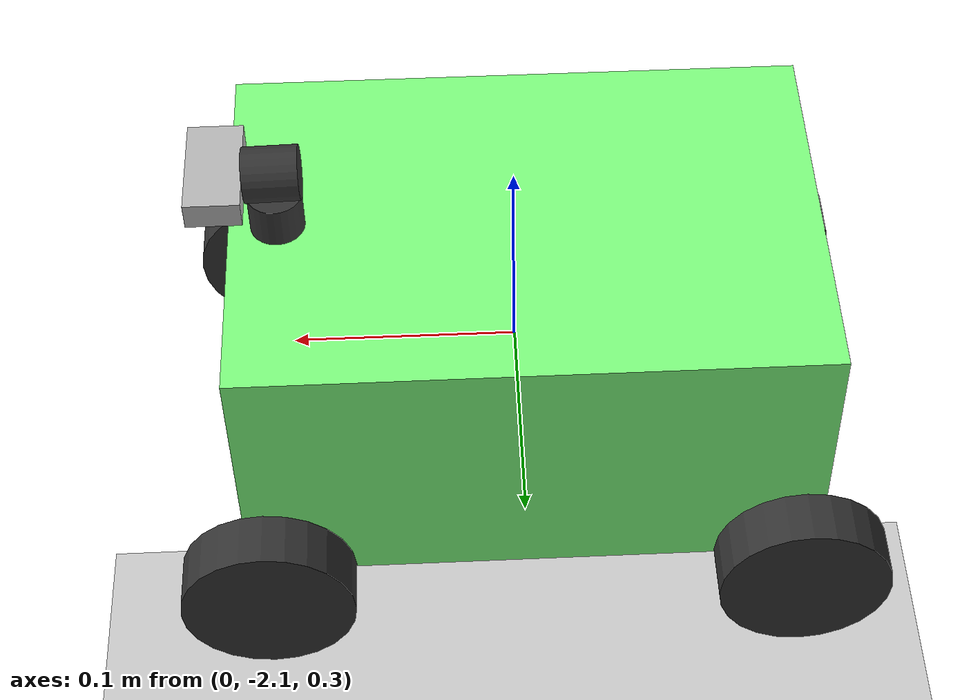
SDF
<?xml version="1.0" ?>
<sdf version="1.6">
  <world name="diff_drive">

    <physics name="1ms" type="ignored">
      <max_step_size>0.001</max_step_size>
      <real_time_factor>1.0</real_time_factor>
    </physics>
    <plugin
      filename="ignition-gazebo-physics-system"
      name="ignition::gazebo::systems::Physics">
    </plugin>
    <plugin
      filename="ignition-gazebo-user-commands-system"
      name="ignition::gazebo::systems::UserCommands">
    </plugin>
    <plugin
      filename="ignition-gazebo-scene-broadcaster-system"
      name="ignition::gazebo::systems::SceneBroadcaster">
    </plugin>

    <light type="directional" name="sun">
      <cast_shadows>true</cast_shadows>
      <pose>0 0 10 0 0 0</pose>
      <diffuse>1 1 1 1</diffuse>
      <specular>0.5 0.5 0.5 1</specular>
      <attenuation>
        <range>1000</range>
        <constant>0.9</constant>
        <linear>0.01</linear>
        <quadratic>0.001</quadratic>
      </attenuation>
      <direction>-0.5 0.1 -0.9</direction>
    </light>

    <model name="ground_plane">
      <static>true</static>
      <link name="link">
        <collision name="collision">
          <geometry>
            <plane>
              <normal>0 0 1</normal>
              <size>100 100</size>
            </plane>
          </geometry>
        </collision>
        <visual name="visual">
          <geometry>
            <plane>
              <normal>0 0 1</normal>
              <size>100 100</size>
            </plane>
          </geometry>
            <material>
            <pbr>
                <metal>
                    <albedo_map>floor.png</albedo_map>
                </metal>
            </pbr>
            </material>
        </visual>
      </link>

    <link name='plate1'>
        <pose>0.065 0 0 0 0 0</pose>
        <inertial>
          <mass>0.01</mass>
          <inertia>
            <ixx>0.126164</ixx>
            <ixy>0</ixy>
            <ixz>0</ixz>
            <iyy>0.416519</iyy>
            <iyz>0</iyz>
            <izz>0.481014</izz>
          </inertia>
        </inertial>
        <visual name='visual'>
          <geometry>
            <box>
              <size>10 0.05 0.005</size>
            </box>
          </geometry>
          <material>
            <ambient>0 0 0 1</ambient>
            <diffuse>0 0 0 1</diffuse>
            <specular>0 0 0 1</specular>
          </material>
        </visual>
      </link>

      <link name='plate2'>
        <pose>5 2.5 0 0 0 0</pose>
        <inertial>
          <mass>0.01</mass>
          <inertia>
            <ixx>0.126164</ixx>
            <ixy>0</ixy>
            <ixz>0</ixz>
            <iyy>0.416519</iyy>
            <iyz>0</iyz>
            <izz>0.481014</izz>
          </inertia>
        </inertial>
        <visual name='visual'>
          <geometry>
            <box>
              <size>0.05 5 0.005</size>
            </box>
          </geometry>
          <material>
            <ambient>0 0 0 1</ambient>
            <diffuse>0 0 0 1</diffuse>
            <specular>0 0 0 1</specular>
          </material>
        </visual>
      </link>

       <joint name='glue' type='fixed'>
        <parent>link</parent>
        <child>plate1</child>
      </joint>

      <joint name='glue1' type='fixed'>
        <parent>plate1</parent>
        <child>plate2</child>
      </joint>
    </model>

    <model name='vehicle_green'>
      <pose>0 -2 0.325 0 -0 0</pose>

    <!--     BODY PARTS        -->
        <link name='chassis'>
            <pose>0 0 .1 0 0 0</pose>
            <inertial>
              <mass>4</mass>
              <inertia>
                <ixx>0.005</ixx>
                <ixy>0</ixy>
                <ixz>0</ixz>
                <iyy>0.005</iyy>
                <iyz>0</iyz>
                <izz>0.005</izz>
              </inertia>
            </inertial>
            <visual name='visual'>
              <geometry>
                <box>
                  <size>0.2159 0.1524 0.10795</size>
                </box>
              </geometry>
              <material>
                <ambient>0.5 1.0 0.5 1</ambient>
                <diffuse>0.5 1.0 0.5 1</diffuse>
                <specular>0.0 1.0 0.0 1</specular>
              </material>
            </visual>
            <collision name='collision'>
              <geometry>
                <box>
                  <size>0.2159 0.1524 0.10795</size>
                </box>
              </geometry>
            </collision>
          </link>

        <link name='plate'>
            <pose>0.065 0 0.045 0 0 0</pose>
            <inertial>
              <mass>.01</mass>
              <inertia>
                <ixx>0.001</ixx>
                <ixy>0</ixy>
                <ixz>0</ixz>
                <iyy>0.001</iyy>
                <iyz>0</iyz>
                <izz>0.001</izz>
              </inertia>
            </inertial>
            <visual name='visual'>
              <geometry>
                <box>
                  <size>0.1 0.05 0.005</size>
                </box>
              </geometry>
              <material>
                <ambient>0.8 2.0 0.5 1</ambient>
                <diffuse>0.5 2.0 0.5 1</diffuse>
                <specular>100 100.0 100.0 1</specular>
              </material>
            </visual>
          </link>

    <!--        Wheel section   -->

      <link name='rear_left_wheel'>
        <pose>-0.1 0.088 0.05 0 1.5707 1.5707</pose>
        <inertial>
          <mass>1</mass>
          <inertia>
            <ixx>0.001</ixx>
            <ixy>0</ixy>
            <ixz>0</ixz>
            <iyy>0.001</iyy>
            <iyz>0</iyz>
            <izz>0.001</izz>
          </inertia>
        </inertial>
        <visual name='visual'>
          <geometry>
            <cylinder>
              <radius>0.0325</radius>
              <length>.02</length>
            </cylinder>
          </geometry>
          <material>
            <ambient>0.2 0.2 0.2 1</ambient>
            <diffuse>0.2 0.2 0.2 1</diffuse>
            <specular>0.2 0.2 0.2 1</specular>
          </material>
        </visual>
        <collision name='collision'>
          <geometry>
            <cylinder>
              <radius>0.0325</radius>
              <length>.02</length>
            </cylinder>
          </geometry>
        </collision>
      </link>

      <link name='rear_right_wheel'>
        <pose> -0.1 -0.088 0.05 0 1.5707 1.5707 </pose>
        <inertial>
          <mass>1</mass>
          <inertia>
            <ixx>0.001</ixx>
            <ixy>0</ixy>
            <ixz>0</ixz>
            <iyy>0.001</iyy>
            <iyz>0</iyz>
            <izz>0.001</izz>
          </inertia>
        </inertial>
        <visual name='visual'>
          <geometry>
            <cylinder>
              <radius>0.0325</radius>
              <length>.02</length>
            </cylinder>
          </geometry>
          <material>
            <ambient>0.2 0.2 0.2 1</ambient>
            <diffuse>0.2 0.2 0.2 1</diffuse>
            <specular>0.2 0.2 0.2 1</specular>
          </material>
        </visual>
        <collision name='collision'>
          <geometry>
            <cylinder>
              <radius>0.0325</radius>
              <length>.02</length>
            </cylinder>
          </geometry>
        </collision>
      </link>

      <link name='front_left_wheel'>
        <pose>0.1 0.088 0.05 0 1.5707 1.5707</pose>
        <inertial>
          <mass>1</mass>
          <inertia>
            <ixx>0.001</ixx>
            <ixy>0</ixy>
            <ixz>0</ixz>
            <iyy>0.001</iyy>
            <iyz>0</iyz>
            <izz>0.001</izz>
          </inertia>
        </inertial>
        <visual name='visual'>
          <geometry>
            <cylinder>
              <radius>0.0325</radius>
              <length>.02</length>
            </cylinder>
          </geometry>
          <material>
            <ambient>0.2 0.2 0.2 1</ambient>
            <diffuse>0.2 0.2 0.2 1</diffuse>
            <specular>0.2 0.2 0.2 1</specular>
          </material>
        </visual>
        <collision name='collision'>
          <geometry>
            <cylinder>
              <radius>0.0325</radius>
              <length>.02</length>
            </cylinder>
          </geometry>
        </collision>
      </link>

      <link name='front_right_wheel'>
        <pose>0.1 -0.088 0.05 0 1.5707 1.5707</pose>
        <inertial>
          <mass>1</mass>
          <inertia>
            <ixx>0.001</ixx>
            <ixy>0</ixy>
            <ixz>0</ixz>
            <iyy>0.001</iyy>
            <iyz>0</iyz>
            <izz>0.001</izz>
          </inertia>
        </inertial>
        <visual name='visual'>
          <geometry>
             <cylinder>
              <radius>0.0325</radius>
              <length>.02</length>
            </cylinder>
          </geometry>
          <material>
            <ambient>0.2 0.2 0.2 1</ambient>
            <diffuse>0.2 0.2 0.2 1</diffuse>
            <specular>0.2 0.2 0.2 1</specular>
          </material>
        </visual>
        <collision name='collision'>
          <geometry>
            <cylinder>
              <radius>0.0325</radius>
              <length>.02</length>
            </cylinder>
          </geometry>
        </collision>
      </link>

    <!--        Servo section   -->

      <link name='head'>
        <pose>0.090 0 0.16 0 0 0</pose>
        <inertial>
          <mass>0.03</mass>
          <inertia>
            <ixx>0.001</ixx>
            <ixy>0</ixy>
            <ixz>0</ixz>
            <iyy>0.001</iyy>
            <iyz>0</iyz>
            <izz>0.001</izz>
          </inertia>
        </inertial>
        <visual name='visual'>
          <geometry>
          <cylinder>
            <radius>0.01</radius>
            <length>0.02</length>
          </cylinder>
          </geometry>
          <material>
            <ambient>0.2 0.2 0.2 1</ambient>
            <diffuse>0.2 0.2 0.2 1</diffuse>
            <specular>0.2 0.2 0.2 1</specular>
          </material>
        </visual>
        <collision name='collision'>
          <geometry>
          <cylinder>
            <radius>0.01</radius>
            <length>0.02</length>
          </cylinder>
          </geometry>
        </collision>
      </link>

      <link name='head2'>
        <pose>0.090 0 0.18 0 1.6 0</pose>
        <inertial>
          <mass>0.03</mass>
          <inertia>
            <ixx>0.001</ixx>
            <ixy>0</ixy>
            <ixz>0</ixz>
            <iyy>0.001</iyy>
            <iyz>0</iyz>
            <izz>0.001</izz>
          </inertia>
        </inertial>
        <visual name='visual'>
          <geometry>
          <cylinder>
            <radius>0.01</radius>
            <length>0.02</length>
          </cylinder>
          </geometry>
          <material>
            <ambient>0.2 0.2 0.2 1</ambient>
            <diffuse>0.2 0.2 0.2 1</diffuse>
            <specular>0.2 0.2 0.2 1</specular>
          </material>
        </visual>
        <collision name='collision'>
          <geometry>
          <cylinder>
            <radius>0.01</radius>
            <length>0.02</length>
          </cylinder>
          </geometry>
        </collision>
      </link>

    <!--    sensor section   -->

      <link name='sensor'>
      <pose>0.11 0 0.18 0 0 0</pose>
     <inertial>
          <mass>0.02</mass>
          <inertia>
            <ixx>0.001</ixx>
            <ixy>0</ixy>
            <ixz>0</ixz>
            <iyy>0.001</iyy>
            <iyz>0</iyz>
            <izz>0.001</izz>
          </inertia>
        </inertial>
      <visual name='visual'>
        <pose>0 0 0 0 0 0</pose>
        <geometry>
          <box>
            <size>0.02 0.04 0.01</size>
          </box>
        </geometry>
      </visual>
    <collision name="collision">
        <pose >0 0 0 0 0 0</pose>
        <geometry>
          <box>
            <size>0.02 0.04 0.01</size>
          </box>
        </geometry>
      </collision>
      <frame name="lidar_frame" attached_to='sensor'>
            <pose>0.8 0 0.5 0 0 0</pose>
        </frame>
      <sensor name='gpu_lidar' type='gpu_lidar'>
          <always_on>1</always_on>
          <visualize>true</visualize>
          <topic>ultrasonic</topic>
          <update_rate>10</update_rate>
          <lidar>
              <scan>
                  <vertical>
                    <samples>5</samples>
                    <resolution>1</resolution>
                    <min_angle>0.00</min_angle>
                    <max_angle>0.25</max_angle>
                  </vertical>
              </scan>
          <range>
            <min>0.120000</min>
            <max>4</max>
            <resolution>0.015000</resolution>
          </range>
          <noise>
            <type>gaussian</type>
            <mean>0.0</mean>
            <stddev>0.01</stddev>
          </noise>
        </lidar>
          <plugin
            filename="libRosIgnPointCloud.so"
            name="ros_ign_point_cloud::PointCloud">
            <namespace>vehicle_green</namespace>
            <topic>pc2</topic>
            <frame_id>/sensor</frame_id>
          </plugin>
    </sensor>
    </link>

      <link name='right_IR'>
      <pose>0.115 0.020 0.042 0 1.6 0</pose>
     <inertial>
          <mass>0.01</mass>
          <inertia>
            <ixx>0.126164</ixx>
            <ixy>0</ixy>
            <ixz>0</ixz>
            <iyy>0.416519</iyy>
            <iyz>0</iyz>
            <izz>0.481014</izz>
          </inertia>
        </inertial>
      <visual name='visual'>
        <pose>0 0 0 0 0 0</pose>
        <geometry>
          <box>
            <size>0.001 0.004 0.001</size>
          </box>
        </geometry>
        <material>
            <ambient>1 0 0 1</ambient>
            <diffuse>1 0 0 1</diffuse>
            <specular>0.1 0.1 0.1 1</specular>
            <emissive>0 0 0 0</emissive>
      </material>
      </visual>
      <sensor name="depth_camera_right" type="depth_camera">
          <update_rate>17</update_rate>
          <visualize>true</visualize>
          <always_on>1</always_on>
          <topic>depth_camera_right</topic>
          <camera>
            <horizontal_fov>1.2</horizontal_fov>
            <image>
              <width>5</width>
              <height>5</height>
              <format>RGB_INT8</format>
            </image>
            <clip>
              <near>0.0001</near>
              <far>10.0</far>
            </clip>
          </camera>
      </sensor>
    </link>

      <link name='left_IR'>
      <pose>0.115 -0.020 0.042 0 1.6 0</pose>
     <inertial>
          <mass>0.01</mass>
          <inertia>
            <ixx>0.126164</ixx>
            <ixy>0</ixy>
            <ixz>0</ixz>
            <iyy>0.416519</iyy>
            <iyz>0</iyz>
            <izz>0.481014</izz>
          </inertia>
        </inertial>
      <visual name='visual'>
        <pose>0 0 0 0 0 0</pose>
        <geometry>
          <box>
            <size>0.001 0.004 0.001</size>
          </box>
        </geometry>
        <material>
            <ambient>1 0 0 1</ambient>
            <diffuse>1 0 0 1</diffuse>
            <specular>0.1 0.1 0.1 1</specular>
            <emissive>0 0 0 0</emissive>
      </material>
      </visual>
        <sensor name="depth_camera_left" type="depth_camera">
          <update_rate>10</update_rate>
          <topic>depth_camera_left</topic>
          <camera>
            <horizontal_fov>1.2</horizontal_fov>
            <image>
              <width>5</width>
              <height>5</height>
              <format>RGB_INT8</format>
            </image>
            <clip>
              <near>0.0001</near>
              <far>10.0</far>
            </clip>
          </camera>
        </sensor>
    </link>

      <link name='middle_IR'>
      <pose>0.115 0 0.042 0 1.6 0</pose>
     <inertial>
          <mass>0.01</mass>
          <inertia>
            <ixx>0.126164</ixx>
            <ixy>0</ixy>
            <ixz>0</ixz>
            <iyy>0.416519</iyy>
            <iyz>0</iyz>
            <izz>0.481014</izz>
          </inertia>
        </inertial>
      <visual name='visual'>
        <pose>0 0 0 0 0 0</pose>
        <geometry>
          <box>
            <size>0.001 0.004 0.001</size>
          </box>
        </geometry>
        <material>
            <ambient>1 0 0 1</ambient>
            <diffuse>1 0 0 1</diffuse>
            <specular>0.1 0.1 0.1 1</specular>
            <emissive>0 0 0 0</emissive>
      </material>
      </visual>
      <sensor name="depth_camera1" type="depth_camera">
          <update_rate>10</update_rate>
          <topic>depth_camera_middle</topic>
           <camera>
            <horizontal_fov>1.2</horizontal_fov>
            <image>
              <width>5</width>
              <height>5</height>
              <format>RGB_INT8</format>
            </image>
            <clip>
              <near>0.0001</near>
              <far>10.0</far>
            </clip>
          </camera>
      </sensor>
    </link>

     <!--    Invisible section-->
      <link name='rear_left_wheel_inv'>
        <pose>-0.1 0.088 0.05 0 1.5707 1.5707</pose>
        <inertial>
          <mass>2</mass>
          <inertia>
            <ixx>0.145833</ixx>
            <ixy>0</ixy>
            <ixz>0</ixz>
            <iyy>0.145833</iyy>
            <iyz>0</iyz>
            <izz>0.125</izz>
          </inertia>
        </inertial>
      </link>

      <link name='rear_right_wheel_inv'>
        <pose> -0.1 -0.088 0.05 0 1.5707 1.5707 </pose>
        <inertial>
          <mass>2</mass>
          <inertia>
            <ixx>0.145833</ixx>
            <ixy>0</ixy>
            <ixz>0</ixz>
            <iyy>0.145833</iyy>
            <iyz>0</iyz>
            <izz>0.125</izz>
          </inertia>
        </inertial>
      </link>

      <link name='front_left_wheel_inv'>
        <pose>0.1 0.088 0.05 0 1.5707 1.5707</pose>
        <inertial>
          <mass>2</mass>
          <inertia>
            <ixx>0.145833</ixx>
            <ixy>0</ixy>
            <ixz>0</ixz>
            <iyy>0.145833</iyy>
            <iyz>0</iyz>
            <izz>0.125</izz>
          </inertia>
        </inertial>
      </link>

      <link name='front_right_wheel_inv'>
        <pose>0.1 -0.088 0.05 0 1.5707 1.5707</pose>
        <inertial>
          <mass>2</mass>
          <inertia>
            <ixx>0.145833</ixx>
            <ixy>0</ixy>
            <ixz>0</ixz>
            <iyy>0.145833</iyy>
            <iyz>0</iyz>
            <izz>0.125</izz>
          </inertia>
        </inertial>
      </link>

      <link name='head_inv'>
        <pose>0 0 0.16 0 0 0</pose>
        <inertial>
          <mass>0.3</mass>
          <inertia>
            <ixx>0.145833</ixx>
            <ixy>0</ixy>
            <ixz>0</ixz>
            <iyy>0.145833</iyy>
            <iyz>0</iyz>
            <izz>0.125</izz>
          </inertia>
        </inertial>
      </link>

      <link name='head2_inv'>
        <pose>0.090 0 0.18 0 1.6 0</pose>
        <inertial>
          <mass>0.3</mass>
          <inertia>
            <ixx>0.145833</ixx>
            <ixy>0</ixy>
            <ixz>0</ixz>
            <iyy>0.145833</iyy>
            <iyz>0</iyz>
            <izz>0.125</izz>
          </inertia>
        </inertial>
      </link>

    <!--        Joint section        -->

    <joint name='rear_left_wheel_joint' type='revolute'>
        <parent>chassis</parent>
        <child>rear_left_wheel</child>
        <axis>
          <xyz>0 0 1</xyz>
          <limit>
            <lower>-1.79769e+308</lower>
            <upper>1.79769e+308</upper>
          </limit>
        </axis>
      </joint>

    <joint name='rear_right_wheel_joint' type='revolute'>
        <parent>chassis</parent>
        <child>rear_right_wheel</child>
        <axis>
          <xyz>0 0 1</xyz>
          <limit>
            <lower>-1.79769e+308</lower>
            <upper>1.79769e+308</upper>
          </limit>
        </axis>
      </joint>

    <joint name='front_left_wheel_joint' type='revolute'>
        <parent>chassis</parent>
        <child>front_left_wheel</child>
        <axis>
          <xyz>0 0 1</xyz>
          <limit>
            <lower>-1.79769e+308</lower>
            <upper>1.79769e+308</upper>
          </limit>
        </axis>
      </joint>

    <joint name='front_right_wheel_joint' type='revolute'>
        <parent>chassis</parent>
        <child>front_right_wheel</child>
        <axis>
          <xyz>0 0 1</xyz>
          <limit>
            <lower>-1.79769e+308</lower>
            <upper>1.79769e+308</upper>
          </limit>
        </axis>
      </joint>

    <joint name='ultrasonic' type='fixed'>
        <parent>head2</parent>
        <child>sensor</child>
        <axis>
          <xyz>0 0 1</xyz>
          <limit>
            <lower>-1.6</lower>
            <upper>1.6</upper>
          </limit>
        </axis>
      </joint>

    <joint name='head_attach' type='revolute'>
        <parent>chassis</parent>
        <child>head</child>
        <axis>
          <xyz>0 0 1</xyz>
          <limit>
            <lower>-1.6</lower>
            <upper>1.6</upper>
          </limit>
        </axis>
      </joint>

    <joint name='head_attach2' type='revolute'>
    <parent>head</parent>
    <child>head2</child>
    <axis>
      <xyz>0 1 0</xyz>
      <limit>
        <lower>-1.6</lower>
        <upper>1.6</upper>
      </limit>
    </axis>
  </joint>

    <joint name='board' type='fixed'>
    <parent>chassis</parent>
    <child>plate</child>
  </joint>

   <joint name='IR_right' type='fixed'>
    <parent>plate</parent>
    <child>right_IR</child>
  </joint>

   <joint name='IR_left' type='fixed'>
    <parent>plate</parent>
    <child>left_IR</child>
  </joint>

   <joint name='IR_middle' type='fixed'>
    <parent>plate</parent>
    <child>middle_IR</child>
  </joint>

    <!--        Invisible joint section        -->

    <joint name='rear_left_wheel_joint_inv' type='revolute'>
        <parent>chassis</parent>
        <child>rear_left_wheel_inv</child>
        <axis>
          <xyz>0 0 1</xyz>
          <limit>
            <lower>-1.79769e+308</lower>
            <upper>1.79769e+308</upper>
          </limit>
        </axis>
      </joint>

    <joint name='rear_right_wheel_joint_inv' type='revolute'>
        <parent>chassis</parent>
        <child>rear_right_wheel_inv</child>
        <axis>
          <xyz>0 0 1</xyz>
          <limit>
            <lower>-1.79769e+308</lower>
            <upper>1.79769e+308</upper>
          </limit>
        </axis>
      </joint>

    <joint name='front_left_wheel_joint_inv' type='revolute'>
        <parent>chassis</parent>
        <child>front_left_wheel_inv</child>
        <axis>
          <xyz>0 0 1</xyz>
          <limit>
            <lower>-1.79769e+308</lower>
            <upper>1.79769e+308</upper>
          </limit>
        </axis>
      </joint>

    <joint name='front_right_wheel_joint_inv' type='revolute'>
        <parent>chassis</parent>
        <child>front_right_wheel_inv</child>
        <axis>
          <xyz>0 0 1</xyz>
          <limit>
            <lower>-1.79769e+308</lower>
            <upper>1.79769e+308</upper>
          </limit>
        </axis>
      </joint>

    <joint name='head_attach_inv' type='revolute'>
        <parent>head_inv</parent>
        <child>chassis</child>
        <axis>
          <xyz>0 0 1</xyz>
          <limit>
            <lower>-1.6</lower>
            <upper>1.6</upper>
          </limit>
        </axis>
      </joint>

    <joint name='head_attach2_inv' type='revolute'>
    <parent>head2_inv</parent>
    <child>head_inv</child>
    <axis>
      <xyz>0 0 1</xyz>
      <limit>
        <lower>-1.6</lower>
        <upper>1.6</upper>
      </limit>
    </axis>
  </joint>

      <!--     PLUGIN PARTS        -->
  <plugin
    filename="ignition-gazebo-diff-drive-system"
    name="ignition::gazebo::systems::DiffDrive">
    <left_joint>front_left_wheel_joint</left_joint>
    <right_joint>front_right_wheel_joint_inv</right_joint>
    <wheel_separation>1.25</wheel_separation>
    <wheel_radius>0.3</wheel_radius>
    <topic>M1</topic>
  </plugin>

    <plugin
    filename="ignition-gazebo-diff-drive-system"
    name="ignition::gazebo::systems::DiffDrive">
    <left_joint>front_left_wheel_joint_inv</left_joint>
    <right_joint>front_right_wheel_joint</right_joint>
    <wheel_separation>1.25</wheel_separation>
    <wheel_radius>0.3</wheel_radius>
    <topic>M3</topic>
  </plugin>

   <plugin
    filename="ignition-gazebo-diff-drive-system"
    name="ignition::gazebo::systems::DiffDrive">
    <left_joint>rear_left_wheel_joint_inv</left_joint>
    <right_joint>rear_right_wheel_joint</right_joint>
    <wheel_separation>1.25</wheel_separation>
    <wheel_radius>0.3</wheel_radius>
    <topic>M4</topic>
  </plugin>

   <plugin
    filename="ignition-gazebo-diff-drive-system"
    name="ignition::gazebo::systems::DiffDrive">
    <left_joint>rear_left_wheel_joint</left_joint>
    <right_joint>rear_right_wheel_joint_inv</right_joint>
    <wheel_separation>1.25</wheel_separation>
    <wheel_radius>0.3</wheel_radius>
    <topic>M2</topic>
  </plugin>

   <plugin
      filename="ignition-gazebo-sensors-system"
      name="ignition::gazebo::systems::Sensors">
      <render_engine>ogre2</render_engine>
    </plugin>

  <plugin
    filename="ignition-gazebo-diff-drive-system"
    name="ignition::gazebo::systems::DiffDrive">
    <left_joint>head_attach</left_joint>
    <right_joint>head_attach_inv</right_joint>
    <wheel_separation>1.25</wheel_separation>
    <wheel_radius>0.3</wheel_radius>
    <topic>servo</topic>
  </plugin>

  <plugin
    filename="ignition-gazebo-diff-drive-system"
    name="ignition::gazebo::systems::DiffDrive">
    <left_joint>head_attach2</left_joint>
    <right_joint>head_attach_inv</right_joint>
    <wheel_separation>1.25</wheel_separation>
    <wheel_radius>0.3</wheel_radius>
    <topic>servo1</topic>
  </plugin>

    <plugin filename="ImageDisplay" name="Image Display 1">
    <ignition-gui>
      <title>RGBD: depth</title>
      <property key="state" type="string">floating</property>
      <property type="double" key="width">5.0</property>
      <property type="double" key="height">5.0</property>
      <property type="double" key="x">5.0</property>
      <property type="double" key="y">5.0</property>
    </ignition-gui>
    <topic>depth_camera_left</topic>
    <topic_picker>true</topic_picker>
    </plugin>

      <plugin filename="ImageDisplay" name="Image Display 3">
        <ignition-gui>
          <title>RGBD: image</title>
          <property key="state" type="string">floating</property>
          <property type="double" key="width">350</property>
          <property type="double" key="height">315</property>
          <property type="double" key="y">400</property>
        </ignition-gui>
        <topic>rgbd_camera/image</topic>
        <topic_picker>false</topic_picker>
      </plugin>

    <!--        SENSOR SECTION   -->

    </model>

  </world>
</sdf>
